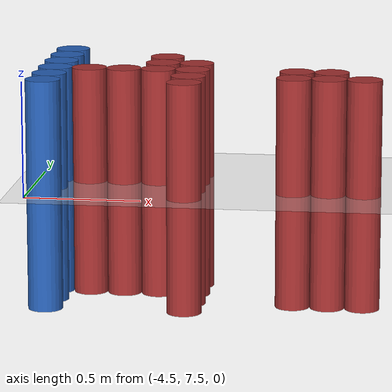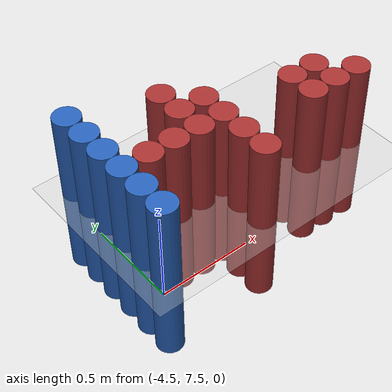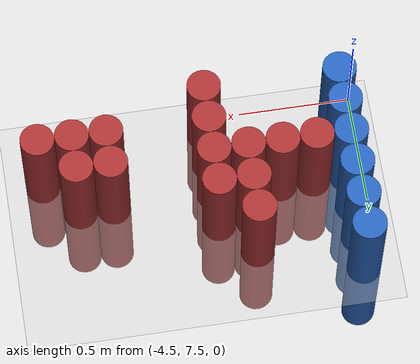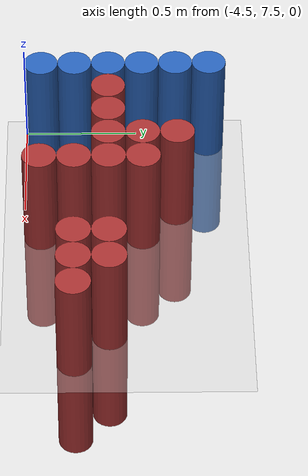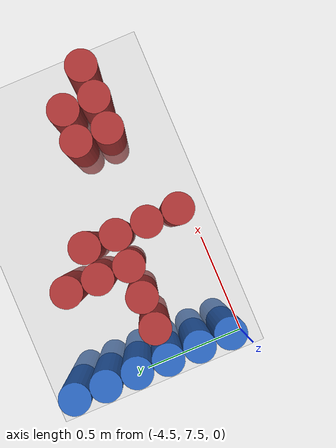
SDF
<sdf version="1.6">
 <world name="default">
  <model name="ground_plane">
   <static>1</static>
   <link name="link">
    <collision name="collision">
     <geometry><plane><normal>0 0 1</normal><size>100 100</size></plane></geometry>
     <surface><friction><ode><mu>100</mu><mu2>50</mu2></ode></friction></surface>
    </collision>
    <visual name="visual">
     <cast_shadows>0</cast_shadows>
     <geometry><plane><normal>0 0 1</normal><size>100 100</size></plane></geometry>
     <material>
      <script><uri>file://media/materials/scripts/gazebo.material</uri><name>Gazebo/Grey</name></script>
     </material>
    </visual>
   </link>
  </model>
  <model name="unit_cylinder_112">
   <static>1</static>
   <pose>-4.425000 7.575000 0.000000 0.000000 0.000000 0.000000</pose>
   <link name="link">
    <inertial>
     <mass>1</mass>
     <inertia><ixx>0.145833</ixx><ixy>0</ixy><ixz>0</ixz><iyy>0.145833</iyy><iyz>0</iyz><izz>0.125</izz></inertia>
    </inertial>
    <collision name="collision">
     <geometry><cylinder><radius>0.075000</radius><length>1</length></cylinder></geometry>
    </collision>
    <visual name="visual">
     <geometry><cylinder><radius>0.075000</radius><length>1</length></cylinder></geometry>
     <material>
      <ambient>0.152000 0.379000 0.720000 1</ambient>
      <diffuse>0.152000 0.379000 0.720000 1</diffuse>
     </material>
     <material>
      <script><name>Gazebo/Grey</name><uri>file://media/materials/scripts/gazebo.material</uri></script>
     </material>
    </visual>
    <sensor name="sensor_contact" type="contact"><contact><collision>collision</collision></contact></sensor>
   </link>
   <plugin filename="gz-sim-touchplugin-system" name="gz::sim::systems::TouchPlugin">
    <target>robot</target>
    <namespace>robot</namespace>
    <time>0.001</time>
    <enabled>true</enabled>
   </plugin>
  </model>
  <model name="unit_cylinder_113">
   <static>1</static>
   <pose>-4.425000 7.725000 0.000000 0.000000 0.000000 0.000000</pose>
   <link name="link">
    <inertial>
     <mass>1</mass>
     <inertia><ixx>0.145833</ixx><ixy>0</ixy><ixz>0</ixz><iyy>0.145833</iyy><iyz>0</iyz><izz>0.125</izz></inertia>
    </inertial>
    <collision name="collision">
     <geometry><cylinder><radius>0.075000</radius><length>1</length></cylinder></geometry>
    </collision>
    <visual name="visual">
     <geometry><cylinder><radius>0.075000</radius><length>1</length></cylinder></geometry>
     <material>
      <ambient>0.152000 0.379000 0.720000 1</ambient>
      <diffuse>0.152000 0.379000 0.720000 1</diffuse>
     </material>
     <material>
      <script><name>Gazebo/Grey</name><uri>file://media/materials/scripts/gazebo.material</uri></script>
     </material>
    </visual>
    <sensor name="sensor_contact" type="contact"><contact><collision>collision</collision></contact></sensor>
   </link>
   <plugin filename="gz-sim-touchplugin-system" name="gz::sim::systems::TouchPlugin">
    <target>robot</target>
    <namespace>robot</namespace>
    <time>0.001</time>
    <enabled>true</enabled>
   </plugin>
  </model>
  <model name="unit_cylinder_114">
   <static>1</static>
   <pose>-4.425000 7.875000 0.000000 0.000000 0.000000 0.000000</pose>
   <link name="link">
    <inertial>
     <mass>1</mass>
     <inertia><ixx>0.145833</ixx><ixy>0</ixy><ixz>0</ixz><iyy>0.145833</iyy><iyz>0</iyz><izz>0.125</izz></inertia>
    </inertial>
    <collision name="collision">
     <geometry><cylinder><radius>0.075000</radius><length>1</length></cylinder></geometry>
    </collision>
    <visual name="visual">
     <geometry><cylinder><radius>0.075000</radius><length>1</length></cylinder></geometry>
     <material>
      <ambient>0.152000 0.379000 0.720000 1</ambient>
      <diffuse>0.152000 0.379000 0.720000 1</diffuse>
     </material>
     <material>
      <script><name>Gazebo/Grey</name><uri>file://media/materials/scripts/gazebo.material</uri></script>
     </material>
    </visual>
    <sensor name="sensor_contact" type="contact"><contact><collision>collision</collision></contact></sensor>
   </link>
   <plugin filename="gz-sim-touchplugin-system" name="gz::sim::systems::TouchPlugin">
    <target>robot</target>
    <namespace>robot</namespace>
    <time>0.001</time>
    <enabled>true</enabled>
   </plugin>
  </model>
  <model name="unit_cylinder_115">
   <static>1</static>
   <pose>-4.425000 8.025000 0.000000 0.000000 0.000000 0.000000</pose>
   <link name="link">
    <inertial>
     <mass>1</mass>
     <inertia><ixx>0.145833</ixx><ixy>0</ixy><ixz>0</ixz><iyy>0.145833</iyy><iyz>0</iyz><izz>0.125</izz></inertia>
    </inertial>
    <collision name="collision">
     <geometry><cylinder><radius>0.075000</radius><length>1</length></cylinder></geometry>
    </collision>
    <visual name="visual">
     <geometry><cylinder><radius>0.075000</radius><length>1</length></cylinder></geometry>
     <material>
      <ambient>0.152000 0.379000 0.720000 1</ambient>
      <diffuse>0.152000 0.379000 0.720000 1</diffuse>
     </material>
     <material>
      <script><name>Gazebo/Grey</name><uri>file://media/materials/scripts/gazebo.material</uri></script>
     </material>
    </visual>
    <sensor name="sensor_contact" type="contact"><contact><collision>collision</collision></contact></sensor>
   </link>
   <plugin filename="gz-sim-touchplugin-system" name="gz::sim::systems::TouchPlugin">
    <target>robot</target>
    <namespace>robot</namespace>
    <time>0.001</time>
    <enabled>true</enabled>
   </plugin>
  </model>
  <model name="unit_cylinder_116">
   <static>1</static>
   <pose>-4.425000 8.175000 0.000000 0.000000 0.000000 0.000000</pose>
   <link name="link">
    <inertial>
     <mass>1</mass>
     <inertia><ixx>0.145833</ixx><ixy>0</ixy><ixz>0</ixz><iyy>0.145833</iyy><iyz>0</iyz><izz>0.125</izz></inertia>
    </inertial>
    <collision name="collision">
     <geometry><cylinder><radius>0.075000</radius><length>1</length></cylinder></geometry>
    </collision>
    <visual name="visual">
     <geometry><cylinder><radius>0.075000</radius><length>1</length></cylinder></geometry>
     <material>
      <ambient>0.152000 0.379000 0.720000 1</ambient>
      <diffuse>0.152000 0.379000 0.720000 1</diffuse>
     </material>
     <material>
      <script><name>Gazebo/Grey</name><uri>file://media/materials/scripts/gazebo.material</uri></script>
     </material>
    </visual>
    <sensor name="sensor_contact" type="contact"><contact><collision>collision</collision></contact></sensor>
   </link>
   <plugin filename="gz-sim-touchplugin-system" name="gz::sim::systems::TouchPlugin">
    <target>robot</target>
    <namespace>robot</namespace>
    <time>0.001</time>
    <enabled>true</enabled>
   </plugin>
  </model>
  <model name="unit_cylinder_117">
   <static>1</static>
   <pose>-4.425000 8.325000 0.000000 0.000000 0.000000 0.000000</pose>
   <link name="link">
    <inertial>
     <mass>1</mass>
     <inertia><ixx>0.145833</ixx><ixy>0</ixy><ixz>0</ixz><iyy>0.145833</iyy><iyz>0</iyz><izz>0.125</izz></inertia>
    </inertial>
    <collision name="collision">
     <geometry><cylinder><radius>0.075000</radius><length>1</length></cylinder></geometry>
    </collision>
    <visual name="visual">
     <geometry><cylinder><radius>0.075000</radius><length>1</length></cylinder></geometry>
     <material>
      <ambient>0.152000 0.379000 0.720000 1</ambient>
      <diffuse>0.152000 0.379000 0.720000 1</diffuse>
     </material>
     <material>
      <script><name>Gazebo/Grey</name><uri>file://media/materials/scripts/gazebo.material</uri></script>
     </material>
    </visual>
    <sensor name="sensor_contact" type="contact"><contact><collision>collision</collision></contact></sensor>
   </link>
   <plugin filename="gz-sim-touchplugin-system" name="gz::sim::systems::TouchPlugin">
    <target>robot</target>
    <namespace>robot</namespace>
    <time>0.001</time>
    <enabled>true</enabled>
   </plugin>
  </model>
  <model name="unit_cylinder_128">
   <static>1</static>
   <pose>-4.275000 7.875000 0.000000 0.000000 0.000000 0.000000</pose>
   <link name="link">
    <inertial>
     <mass>1</mass>
     <inertia><ixx>0.145833</ixx><ixy>0</ixy><ixz>0</ixz><iyy>0.145833</iyy><iyz>0</iyz><izz>0.125</izz></inertia>
    </inertial>
    <collision name="collision">
     <geometry><cylinder><radius>0.075000</radius><length>1</length></cylinder></geometry>
    </collision>
    <visual name="visual">
     <geometry><cylinder><radius>0.075000</radius><length>1</length></cylinder></geometry>
     <material>
      <ambient>0.648000 0.192000 0.192000 1</ambient>
      <diffuse>0.648000 0.192000 0.192000 1</diffuse>
     </material>
     <material>
      <script><name>Gazebo/Grey</name><uri>file://media/materials/scripts/gazebo.material</uri></script>
     </material>
    </visual>
    <sensor name="sensor_contact" type="contact"><contact><collision>collision</collision></contact></sensor>
   </link>
   <plugin filename="gz-sim-touchplugin-system" name="gz::sim::systems::TouchPlugin">
    <target>robot</target>
    <namespace>robot</namespace>
    <time>0.001</time>
    <enabled>true</enabled>
   </plugin>
  </model>
  <model name="unit_cylinder_145">
   <static>1</static>
   <pose>-4.125000 7.875000 0.000000 0.000000 0.000000 0.000000</pose>
   <link name="link">
    <inertial>
     <mass>1</mass>
     <inertia><ixx>0.145833</ixx><ixy>0</ixy><ixz>0</ixz><iyy>0.145833</iyy><iyz>0</iyz><izz>0.125</izz></inertia>
    </inertial>
    <collision name="collision">
     <geometry><cylinder><radius>0.075000</radius><length>1</length></cylinder></geometry>
    </collision>
    <visual name="visual">
     <geometry><cylinder><radius>0.075000</radius><length>1</length></cylinder></geometry>
     <material>
      <ambient>0.648000 0.192000 0.192000 1</ambient>
      <diffuse>0.648000 0.192000 0.192000 1</diffuse>
     </material>
     <material>
      <script><name>Gazebo/Grey</name><uri>file://media/materials/scripts/gazebo.material</uri></script>
     </material>
    </visual>
    <sensor name="sensor_contact" type="contact"><contact><collision>collision</collision></contact></sensor>
   </link>
   <plugin filename="gz-sim-touchplugin-system" name="gz::sim::systems::TouchPlugin">
    <target>robot</target>
    <namespace>robot</namespace>
    <time>0.001</time>
    <enabled>true</enabled>
   </plugin>
  </model>
  <model name="unit_cylinder_156">
   <static>1</static>
   <pose>-3.975000 7.875000 0.000000 0.000000 0.000000 0.000000</pose>
   <link name="link">
    <inertial>
     <mass>1</mass>
     <inertia><ixx>0.145833</ixx><ixy>0</ixy><ixz>0</ixz><iyy>0.145833</iyy><iyz>0</iyz><izz>0.125</izz></inertia>
    </inertial>
    <collision name="collision">
     <geometry><cylinder><radius>0.075000</radius><length>1</length></cylinder></geometry>
    </collision>
    <visual name="visual">
     <geometry><cylinder><radius>0.075000</radius><length>1</length></cylinder></geometry>
     <material>
      <ambient>0.648000 0.192000 0.192000 1</ambient>
      <diffuse>0.648000 0.192000 0.192000 1</diffuse>
     </material>
     <material>
      <script><name>Gazebo/Grey</name><uri>file://media/materials/scripts/gazebo.material</uri></script>
     </material>
    </visual>
    <sensor name="sensor_contact" type="contact"><contact><collision>collision</collision></contact></sensor>
   </link>
   <plugin filename="gz-sim-touchplugin-system" name="gz::sim::systems::TouchPlugin">
    <target>robot</target>
    <namespace>robot</namespace>
    <time>0.001</time>
    <enabled>true</enabled>
   </plugin>
  </model>
  <model name="unit_cylinder_157">
   <static>1</static>
   <pose>-3.975000 8.025000 0.000000 0.000000 0.000000 0.000000</pose>
   <link name="link">
    <inertial>
     <mass>1</mass>
     <inertia><ixx>0.145833</ixx><ixy>0</ixy><ixz>0</ixz><iyy>0.145833</iyy><iyz>0</iyz><izz>0.125</izz></inertia>
    </inertial>
    <collision name="collision">
     <geometry><cylinder><radius>0.075000</radius><length>1</length></cylinder></geometry>
    </collision>
    <visual name="visual">
     <geometry><cylinder><radius>0.075000</radius><length>1</length></cylinder></geometry>
     <material>
      <ambient>0.648000 0.192000 0.192000 1</ambient>
      <diffuse>0.648000 0.192000 0.192000 1</diffuse>
     </material>
     <material>
      <script><name>Gazebo/Grey</name><uri>file://media/materials/scripts/gazebo.material</uri></script>
     </material>
    </visual>
    <sensor name="sensor_contact" type="contact"><contact><collision>collision</collision></contact></sensor>
   </link>
   <plugin filename="gz-sim-touchplugin-system" name="gz::sim::systems::TouchPlugin">
    <target>robot</target>
    <namespace>robot</namespace>
    <time>0.001</time>
    <enabled>true</enabled>
   </plugin>
  </model>
  <model name="unit_cylinder_158">
   <static>1</static>
   <pose>-3.975000 8.175000 0.000000 0.000000 0.000000 0.000000</pose>
   <link name="link">
    <inertial>
     <mass>1</mass>
     <inertia><ixx>0.145833</ixx><ixy>0</ixy><ixz>0</ixz><iyy>0.145833</iyy><iyz>0</iyz><izz>0.125</izz></inertia>
    </inertial>
    <collision name="collision">
     <geometry><cylinder><radius>0.075000</radius><length>1</length></cylinder></geometry>
    </collision>
    <visual name="visual">
     <geometry><cylinder><radius>0.075000</radius><length>1</length></cylinder></geometry>
     <material>
      <ambient>0.648000 0.192000 0.192000 1</ambient>
      <diffuse>0.648000 0.192000 0.192000 1</diffuse>
     </material>
     <material>
      <script><name>Gazebo/Grey</name><uri>file://media/materials/scripts/gazebo.material</uri></script>
     </material>
    </visual>
    <sensor name="sensor_contact" type="contact"><contact><collision>collision</collision></contact></sensor>
   </link>
   <plugin filename="gz-sim-touchplugin-system" name="gz::sim::systems::TouchPlugin">
    <target>robot</target>
    <namespace>robot</namespace>
    <time>0.001</time>
    <enabled>true</enabled>
   </plugin>
  </model>
  <model name="unit_cylinder_165">
   <static>1</static>
   <pose>-3.825000 7.575000 0.000000 0.000000 0.000000 0.000000</pose>
   <link name="link">
    <inertial>
     <mass>1</mass>
     <inertia><ixx>0.145833</ixx><ixy>0</ixy><ixz>0</ixz><iyy>0.145833</iyy><iyz>0</iyz><izz>0.125</izz></inertia>
    </inertial>
    <collision name="collision">
     <geometry><cylinder><radius>0.075000</radius><length>1</length></cylinder></geometry>
    </collision>
    <visual name="visual">
     <geometry><cylinder><radius>0.075000</radius><length>1</length></cylinder></geometry>
     <material>
      <ambient>0.648000 0.192000 0.192000 1</ambient>
      <diffuse>0.648000 0.192000 0.192000 1</diffuse>
     </material>
     <material>
      <script><name>Gazebo/Grey</name><uri>file://media/materials/scripts/gazebo.material</uri></script>
     </material>
    </visual>
    <sensor name="sensor_contact" type="contact"><contact><collision>collision</collision></contact></sensor>
   </link>
   <plugin filename="gz-sim-touchplugin-system" name="gz::sim::systems::TouchPlugin">
    <target>robot</target>
    <namespace>robot</namespace>
    <time>0.001</time>
    <enabled>true</enabled>
   </plugin>
  </model>
  <model name="unit_cylinder_166">
   <static>1</static>
   <pose>-3.825000 7.725000 0.000000 0.000000 0.000000 0.000000</pose>
   <link name="link">
    <inertial>
     <mass>1</mass>
     <inertia><ixx>0.145833</ixx><ixy>0</ixy><ixz>0</ixz><iyy>0.145833</iyy><iyz>0</iyz><izz>0.125</izz></inertia>
    </inertial>
    <collision name="collision">
     <geometry><cylinder><radius>0.075000</radius><length>1</length></cylinder></geometry>
    </collision>
    <visual name="visual">
     <geometry><cylinder><radius>0.075000</radius><length>1</length></cylinder></geometry>
     <material>
      <ambient>0.648000 0.192000 0.192000 1</ambient>
      <diffuse>0.648000 0.192000 0.192000 1</diffuse>
     </material>
     <material>
      <script><name>Gazebo/Grey</name><uri>file://media/materials/scripts/gazebo.material</uri></script>
     </material>
    </visual>
    <sensor name="sensor_contact" type="contact"><contact><collision>collision</collision></contact></sensor>
   </link>
   <plugin filename="gz-sim-touchplugin-system" name="gz::sim::systems::TouchPlugin">
    <target>robot</target>
    <namespace>robot</namespace>
    <time>0.001</time>
    <enabled>true</enabled>
   </plugin>
  </model>
  <model name="unit_cylinder_167">
   <static>1</static>
   <pose>-3.825000 7.875000 0.000000 0.000000 0.000000 0.000000</pose>
   <link name="link">
    <inertial>
     <mass>1</mass>
     <inertia><ixx>0.145833</ixx><ixy>0</ixy><ixz>0</ixz><iyy>0.145833</iyy><iyz>0</iyz><izz>0.125</izz></inertia>
    </inertial>
    <collision name="collision">
     <geometry><cylinder><radius>0.075000</radius><length>1</length></cylinder></geometry>
    </collision>
    <visual name="visual">
     <geometry><cylinder><radius>0.075000</radius><length>1</length></cylinder></geometry>
     <material>
      <ambient>0.648000 0.192000 0.192000 1</ambient>
      <diffuse>0.648000 0.192000 0.192000 1</diffuse>
     </material>
     <material>
      <script><name>Gazebo/Grey</name><uri>file://media/materials/scripts/gazebo.material</uri></script>
     </material>
    </visual>
    <sensor name="sensor_contact" type="contact"><contact><collision>collision</collision></contact></sensor>
   </link>
   <plugin filename="gz-sim-touchplugin-system" name="gz::sim::systems::TouchPlugin">
    <target>robot</target>
    <namespace>robot</namespace>
    <time>0.001</time>
    <enabled>true</enabled>
   </plugin>
  </model>
  <model name="unit_cylinder_168">
   <static>1</static>
   <pose>-3.825000 8.025000 0.000000 0.000000 0.000000 0.000000</pose>
   <link name="link">
    <inertial>
     <mass>1</mass>
     <inertia><ixx>0.145833</ixx><ixy>0</ixy><ixz>0</ixz><iyy>0.145833</iyy><iyz>0</iyz><izz>0.125</izz></inertia>
    </inertial>
    <collision name="collision">
     <geometry><cylinder><radius>0.075000</radius><length>1</length></cylinder></geometry>
    </collision>
    <visual name="visual">
     <geometry><cylinder><radius>0.075000</radius><length>1</length></cylinder></geometry>
     <material>
      <ambient>0.648000 0.192000 0.192000 1</ambient>
      <diffuse>0.648000 0.192000 0.192000 1</diffuse>
     </material>
     <material>
      <script><name>Gazebo/Grey</name><uri>file://media/materials/scripts/gazebo.material</uri></script>
     </material>
    </visual>
    <sensor name="sensor_contact" type="contact"><contact><collision>collision</collision></contact></sensor>
   </link>
   <plugin filename="gz-sim-touchplugin-system" name="gz::sim::systems::TouchPlugin">
    <target>robot</target>
    <namespace>robot</namespace>
    <time>0.001</time>
    <enabled>true</enabled>
   </plugin>
  </model>
  <model name="unit_cylinder_189">
   <static>1</static>
   <pose>-3.375000 7.725000 0.000000 0.000000 0.000000 0.000000</pose>
   <link name="link">
    <inertial>
     <mass>1</mass>
     <inertia><ixx>0.145833</ixx><ixy>0</ixy><ixz>0</ixz><iyy>0.145833</iyy><iyz>0</iyz><izz>0.125</izz></inertia>
    </inertial>
    <collision name="collision">
     <geometry><cylinder><radius>0.075000</radius><length>1</length></cylinder></geometry>
    </collision>
    <visual name="visual">
     <geometry><cylinder><radius>0.075000</radius><length>1</length></cylinder></geometry>
     <material>
      <ambient>0.648000 0.192000 0.192000 1</ambient>
      <diffuse>0.648000 0.192000 0.192000 1</diffuse>
     </material>
     <material>
      <script><name>Gazebo/Grey</name><uri>file://media/materials/scripts/gazebo.material</uri></script>
     </material>
    </visual>
    <sensor name="sensor_contact" type="contact"><contact><collision>collision</collision></contact></sensor>
   </link>
   <plugin filename="gz-sim-touchplugin-system" name="gz::sim::systems::TouchPlugin">
    <target>robot</target>
    <namespace>robot</namespace>
    <time>0.001</time>
    <enabled>true</enabled>
   </plugin>
  </model>
  <model name="unit_cylinder_190">
   <static>1</static>
   <pose>-3.375000 7.875000 0.000000 0.000000 0.000000 0.000000</pose>
   <link name="link">
    <inertial>
     <mass>1</mass>
     <inertia><ixx>0.145833</ixx><ixy>0</ixy><ixz>0</ixz><iyy>0.145833</iyy><iyz>0</iyz><izz>0.125</izz></inertia>
    </inertial>
    <collision name="collision">
     <geometry><cylinder><radius>0.075000</radius><length>1</length></cylinder></geometry>
    </collision>
    <visual name="visual">
     <geometry><cylinder><radius>0.075000</radius><length>1</length></cylinder></geometry>
     <material>
      <ambient>0.648000 0.192000 0.192000 1</ambient>
      <diffuse>0.648000 0.192000 0.192000 1</diffuse>
     </material>
     <material>
      <script><name>Gazebo/Grey</name><uri>file://media/materials/scripts/gazebo.material</uri></script>
     </material>
    </visual>
    <sensor name="sensor_contact" type="contact"><contact><collision>collision</collision></contact></sensor>
   </link>
   <plugin filename="gz-sim-touchplugin-system" name="gz::sim::systems::TouchPlugin">
    <target>robot</target>
    <namespace>robot</namespace>
    <time>0.001</time>
    <enabled>true</enabled>
   </plugin>
  </model>
  <model name="unit_cylinder_195">
   <static>1</static>
   <pose>-3.225000 7.725000 0.000000 0.000000 0.000000 0.000000</pose>
   <link name="link">
    <inertial>
     <mass>1</mass>
     <inertia><ixx>0.145833</ixx><ixy>0</ixy><ixz>0</ixz><iyy>0.145833</iyy><iyz>0</iyz><izz>0.125</izz></inertia>
    </inertial>
    <collision name="collision">
     <geometry><cylinder><radius>0.075000</radius><length>1</length></cylinder></geometry>
    </collision>
    <visual name="visual">
     <geometry><cylinder><radius>0.075000</radius><length>1</length></cylinder></geometry>
     <material>
      <ambient>0.648000 0.192000 0.192000 1</ambient>
      <diffuse>0.648000 0.192000 0.192000 1</diffuse>
     </material>
     <material>
      <script><name>Gazebo/Grey</name><uri>file://media/materials/scripts/gazebo.material</uri></script>
     </material>
    </visual>
    <sensor name="sensor_contact" type="contact"><contact><collision>collision</collision></contact></sensor>
   </link>
   <plugin filename="gz-sim-touchplugin-system" name="gz::sim::systems::TouchPlugin">
    <target>robot</target>
    <namespace>robot</namespace>
    <time>0.001</time>
    <enabled>true</enabled>
   </plugin>
  </model>
  <model name="unit_cylinder_196">
   <static>1</static>
   <pose>-3.225000 7.875000 0.000000 0.000000 0.000000 0.000000</pose>
   <link name="link">
    <inertial>
     <mass>1</mass>
     <inertia><ixx>0.145833</ixx><ixy>0</ixy><ixz>0</ixz><iyy>0.145833</iyy><iyz>0</iyz><izz>0.125</izz></inertia>
    </inertial>
    <collision name="collision">
     <geometry><cylinder><radius>0.075000</radius><length>1</length></cylinder></geometry>
    </collision>
    <visual name="visual">
     <geometry><cylinder><radius>0.075000</radius><length>1</length></cylinder></geometry>
     <material>
      <ambient>0.648000 0.192000 0.192000 1</ambient>
      <diffuse>0.648000 0.192000 0.192000 1</diffuse>
     </material>
     <material>
      <script><name>Gazebo/Grey</name><uri>file://media/materials/scripts/gazebo.material</uri></script>
     </material>
    </visual>
    <sensor name="sensor_contact" type="contact"><contact><collision>collision</collision></contact></sensor>
   </link>
   <plugin filename="gz-sim-touchplugin-system" name="gz::sim::systems::TouchPlugin">
    <target>robot</target>
    <namespace>robot</namespace>
    <time>0.001</time>
    <enabled>true</enabled>
   </plugin>
  </model>
  <model name="unit_cylinder_201">
   <static>1</static>
   <pose>-3.075000 7.725000 0.000000 0.000000 0.000000 0.000000</pose>
   <link name="link">
    <inertial>
     <mass>1</mass>
     <inertia><ixx>0.145833</ixx><ixy>0</ixy><ixz>0</ixz><iyy>0.145833</iyy><iyz>0</iyz><izz>0.125</izz></inertia>
    </inertial>
    <collision name="collision">
     <geometry><cylinder><radius>0.075000</radius><length>1</length></cylinder></geometry>
    </collision>
    <visual name="visual">
     <geometry><cylinder><radius>0.075000</radius><length>1</length></cylinder></geometry>
     <material>
      <ambient>0.648000 0.192000 0.192000 1</ambient>
      <diffuse>0.648000 0.192000 0.192000 1</diffuse>
     </material>
     <material>
      <script><name>Gazebo/Grey</name><uri>file://media/materials/scripts/gazebo.material</uri></script>
     </material>
    </visual>
    <sensor name="sensor_contact" type="contact"><contact><collision>collision</collision></contact></sensor>
   </link>
   <plugin filename="gz-sim-touchplugin-system" name="gz::sim::systems::TouchPlugin">
    <target>robot</target>
    <namespace>robot</namespace>
    <time>0.001</time>
    <enabled>true</enabled>
   </plugin>
  </model>
 </world>
</sdf>
